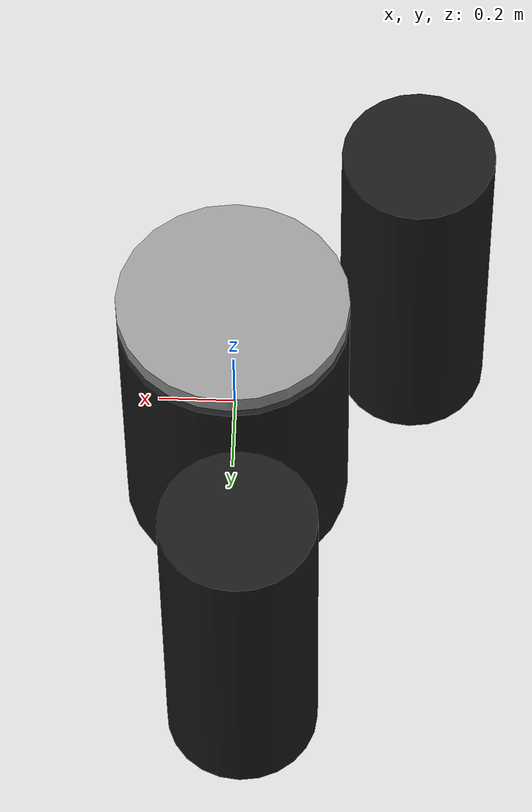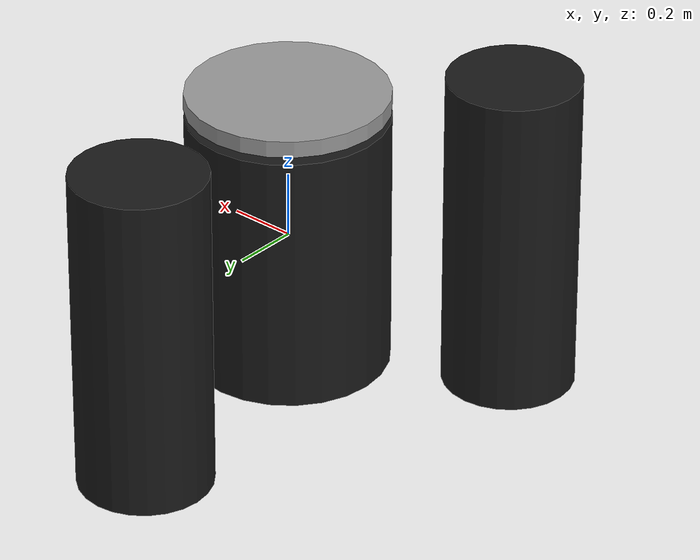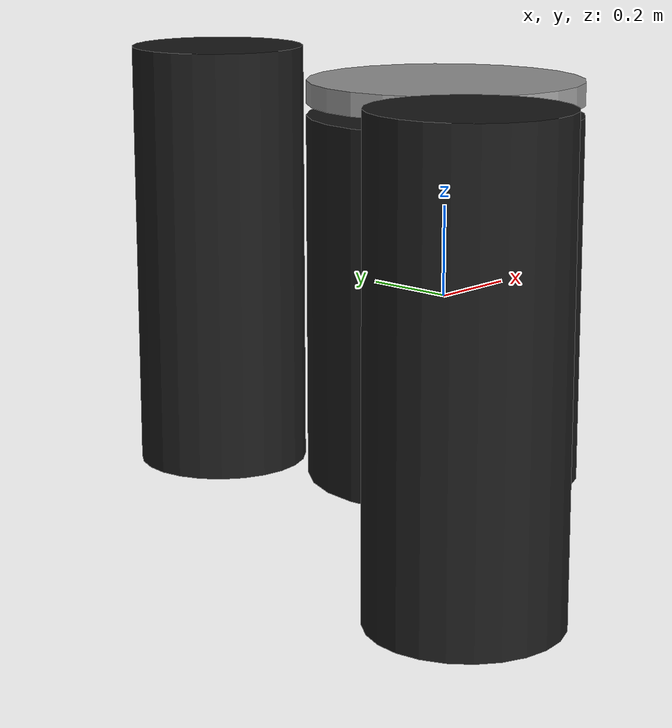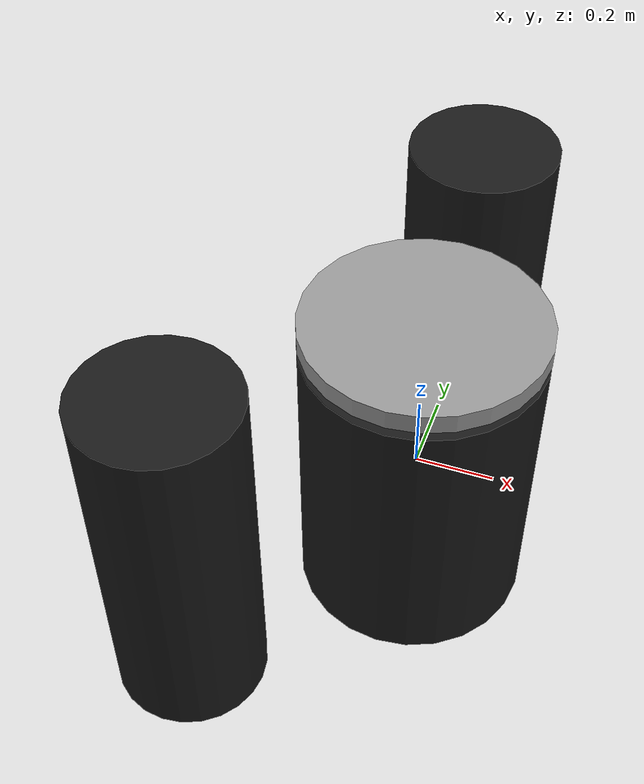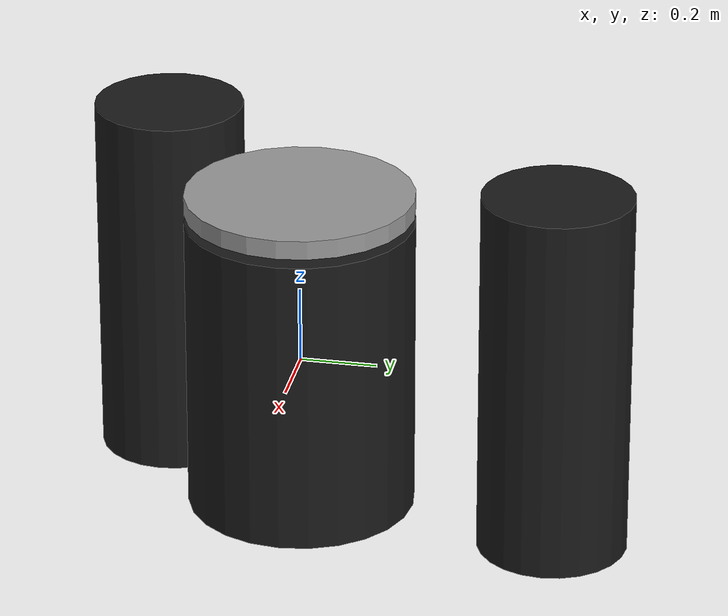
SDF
<?xml version="1.0" ?>
<sdf version="1.6">
  <world name="world_with_multiple_dustbins">

    <!-- Dustbin Model 1 -->
    <model name="dustbin_1">
      <pose>-0.466065 -0.450597 0 0 0 0</pose> <!-- Position the first dustbin at (1, 1, 0) -->
      <static>true</static>
      <link name="dustbin_body">
        <collision name="body_collision">
          <geometry>
            <cylinder>
              <radius>0.2</radius>
              <length>1.0</length>
            </cylinder>
          </geometry>
        </collision>
        <visual name="body_visual">
          <geometry>
            <cylinder>
              <radius>0.2</radius>
              <length>1.0</length>
            </cylinder>
          </geometry>
          <material>
            <ambient>0.1 0.1 0.1 1</ambient>
            <diffuse>0.1 0.1 0.1 1</diffuse>
          </material>
        </visual>
      </link>

    </model>

   <model name="dustbin_2">
      <pose>-0.039282 0.665452 0.004293 0 0 0</pose> <!-- Position the second dustbin at (2.5, 1, 0) -->
      <static>true</static>
      <link name="dustbin_body">
        <collision name="body_collision">
          <geometry>
            <cylinder>
              <radius>0.2</radius>
              <length>1.0</length>
            </cylinder>
          </geometry>
        </collision>
        <visual name="body_visual">
          <geometry>
            <cylinder>
              <radius>0.2</radius>
              <length>1.0</length>
            </cylinder>
          </geometry>
          <material>
            <ambient>0.1 0.1 0.1 1</ambient>
            <diffuse>0.1 0.1 0.1 1</diffuse>
          </material>
        </visual>
      </link>

    </model>

    <!-- Dustbin Model 3 -->
    <model name="dustbin_3">
      <pose>0.0 0.0 0 0 0 0</pose> <!-- Position the third dustbin at (4, 1, 0) -->
      <static>true</static>
      <link name="dustbin_body">
        <collision name="body_collision">
          <geometry>
            <cylinder>
              <radius>0.3</radius>
              <length>0.8</length>
            </cylinder>
          </geometry>
        </collision>
        <visual name="body_visual">
          <geometry>
            <cylinder>
              <radius>0.3</radius>
              <length>0.8</length>
            </cylinder>
          </geometry>
          <material>
            <ambient>0.1 0.1 0.1 1</ambient>
            <diffuse>0.1 0.1 0.1 1</diffuse>
          </material>
        </visual>
      </link>

      <link name="dustbin_lid">
        <pose>0 0 0.45 0 0 0</pose>
        <collision name="lid_collision">
          <geometry>
            <cylinder>
              <radius>0.3</radius>
              <length>0.05</length>
            </cylinder>
          </geometry>
        </collision>
        <visual name="lid_visual">
          <geometry>
            <cylinder>
              <radius>0.3</radius>
              <length>0.05</length>
            </cylinder>
          </geometry>
          <material>
            <ambient>0.6 0.6 0.6 1</ambient>
            <diffuse>0.6 0.6 0.6 1</diffuse>
          </material>
        </visual>
      </link>
    </model>

  </world>
</sdf>
